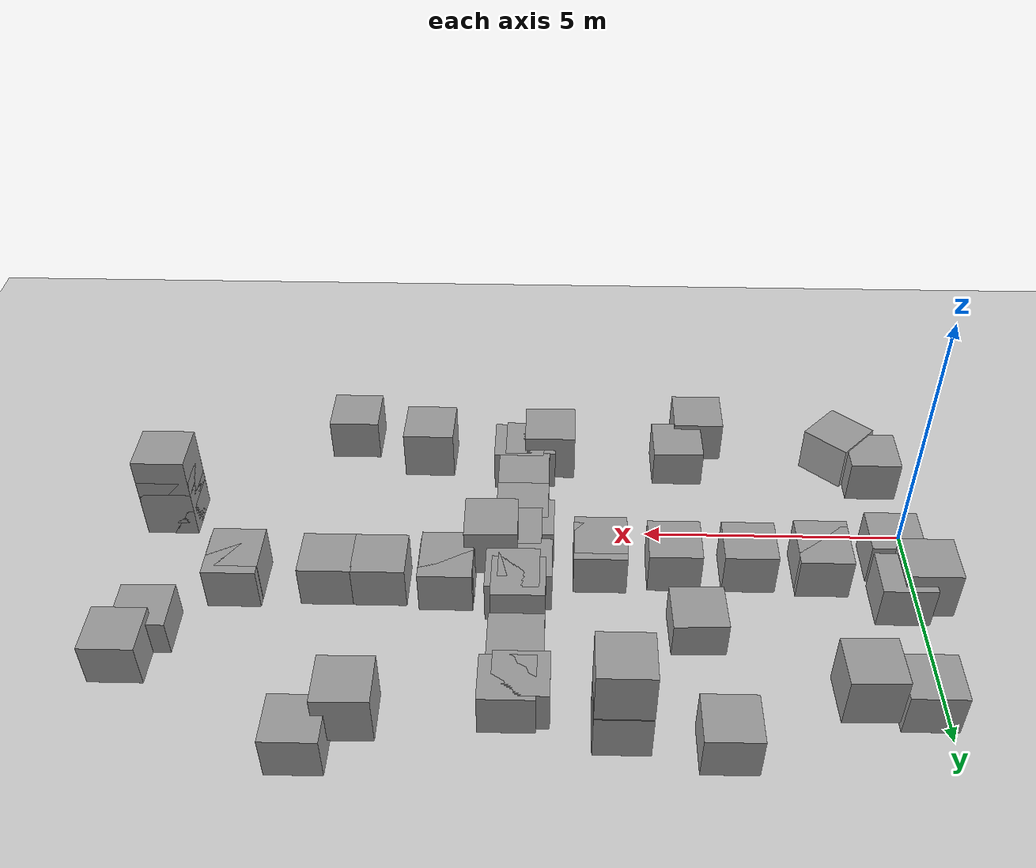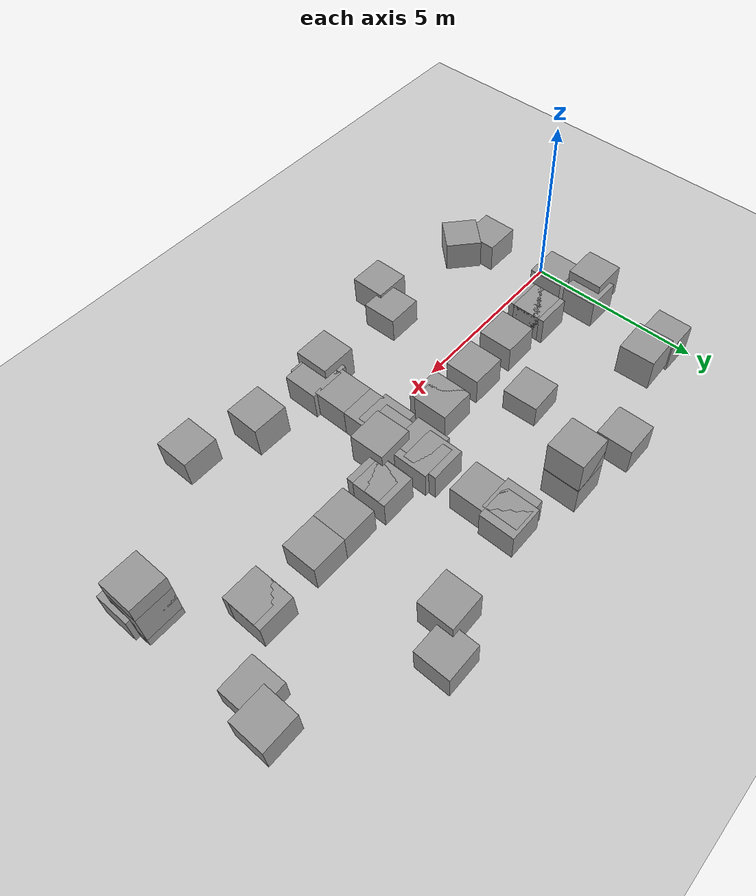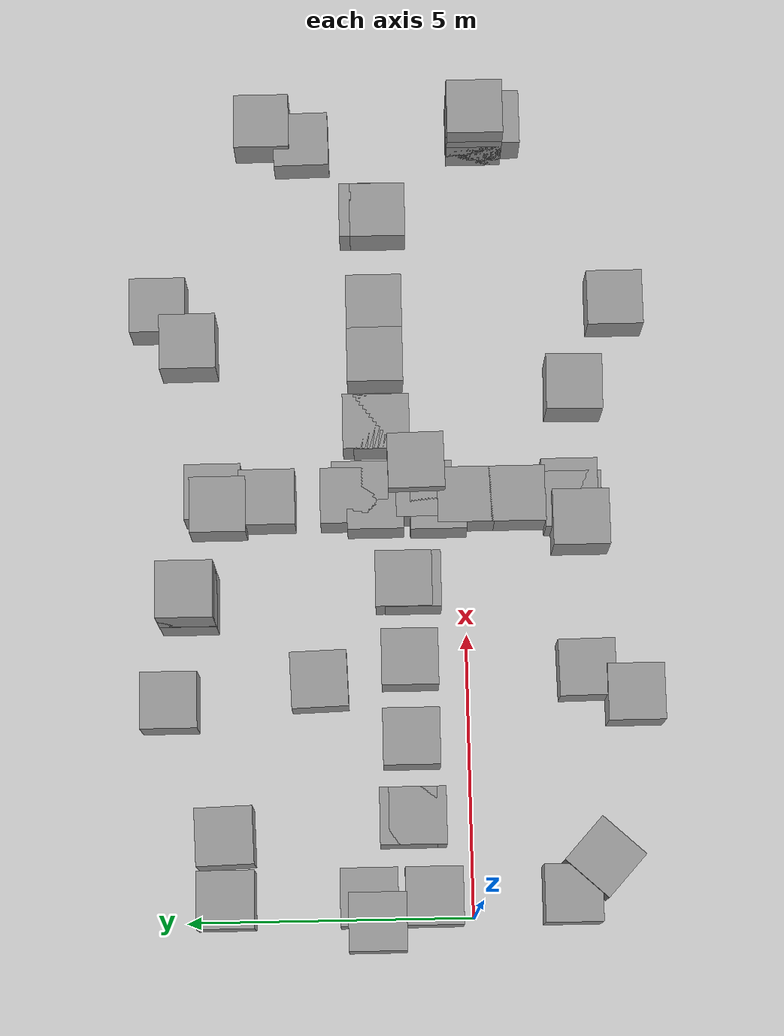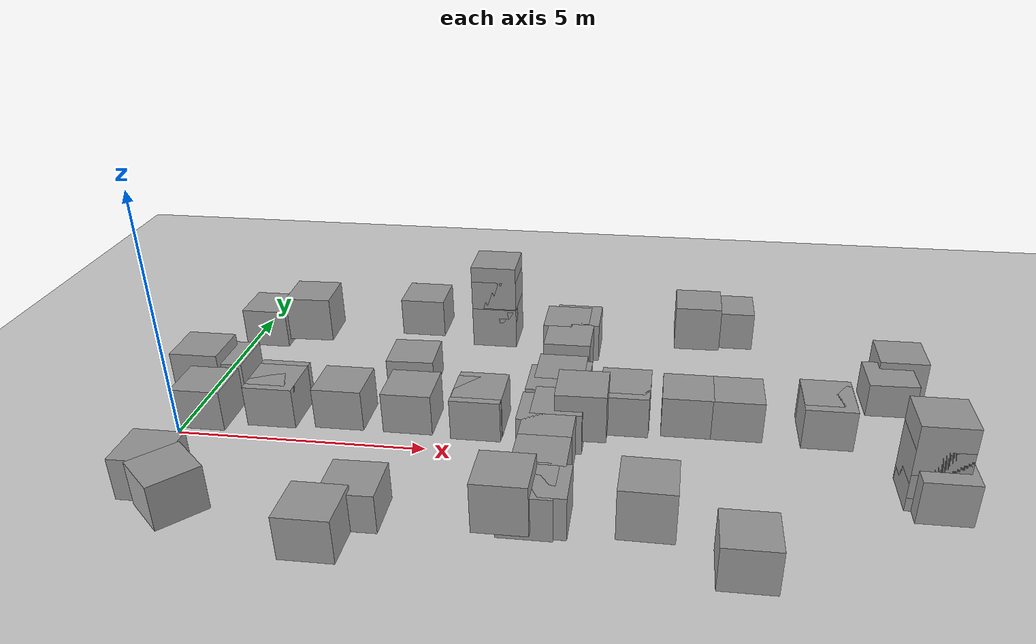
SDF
<sdf version='1.7'>
  <world name='default'>
    <light name='sun' type='directional'>
      <cast_shadows>1</cast_shadows>
      <pose>0 0 10 0 -0 0</pose>
      <diffuse>0.8 0.8 0.8 1</diffuse>
      <specular>0.2 0.2 0.2 1</specular>
      <attenuation>
        <range>1000</range>
        <constant>0.9</constant>
        <linear>0.01</linear>
        <quadratic>0.001</quadratic>
      </attenuation>
      <direction>-0.5 0.1 -0.9</direction>
      <spot>
        <inner_angle>0</inner_angle>
        <outer_angle>0</outer_angle>
        <falloff>0</falloff>
      </spot>
    </light>
    <model name='ground_plane'>
      <static>1</static>
      <link name='link'>
        <collision name='collision'>
          <geometry>
            <plane>
              <normal>0 0 1</normal>
              <size>100 100</size>
            </plane>
          </geometry>
          <surface>
            <contact>
              <collide_bitmask>65535</collide_bitmask>
              <ode/>
            </contact>
            <friction>
              <ode>
                <mu>100</mu>
                <mu2>50</mu2>
              </ode>
              <torsional>
                <ode/>
              </torsional>
            </friction>
            <bounce/>
          </surface>
          <max_contacts>10</max_contacts>
        </collision>
        <visual name='visual'>
          <cast_shadows>0</cast_shadows>
          <geometry>
            <plane>
              <normal>0 0 1</normal>
              <size>100 100</size>
            </plane>
          </geometry>
          <material>
            <script>
              <uri>file://media/materials/scripts/gazebo.material</uri>
              <name>Gazebo/Grey</name>
            </script>
          </material>
        </visual>
        <self_collide>0</self_collide>
        <enable_wind>0</enable_wind>
        <kinematic>0</kinematic>
      </link>
    </model>
    <gravity>0 0 -9.8</gravity>
    <magnetic_field>6e-06 2.3e-05 -4.2e-05</magnetic_field>
    <atmosphere type='adiabatic'/>
    <physics type='ode'>
      <max_step_size>0.001</max_step_size>
      <real_time_factor>1</real_time_factor>
      <real_time_update_rate>1000</real_time_update_rate>
    </physics>
    <scene>
      <ambient>0.4 0.4 0.4 1</ambient>
      <background>0.7 0.7 0.7 1</background>
      <shadows>1</shadows>
    </scene>
    <wind/>
    <spherical_coordinates>
      <surface_model>EARTH_WGS84</surface_model>
      <latitude_deg>0</latitude_deg>
      <longitude_deg>0</longitude_deg>
      <elevation>0</elevation>
      <heading_deg>0</heading_deg>
    </spherical_coordinates>
    <gui fullscreen='0'>
      <camera name='user_camera'>
        <pose>-2.70813 5.70495 19.0216 2e-06 1.5418 -1.5749</pose>
        <view_controller>orbit</view_controller>
        <projection_type>perspective</projection_type>
      </camera>
    </gui>
    <include>
      <uri>model://unit_box</uri>
      <name>bed</name>
      <pose>4.28500 -2.08250 0.26000 0 0 0.01449</pose>
      <scale>2.07 1.46 0.52000</scale>
    </include>
<include>
      <uri>model://unit_box</uri>
      <name>low_table</name>
      <pose>0.96000 -2.27250 0.39000 0 0 2.40252</pose>
      <scale>1.07 0.52 0.02000</scale>
    </include>
<include>
      <uri>model://unit_box</uri>
      <name>round_table</name>
      <pose>6.90000 -2.04000 0.64000 0 0 0.00000</pose>
      <scale>0.29 0.25 0.02000</scale>
    </include>
<include>
      <uri>model://unit_box</uri>
      <name>living_table</name>
      <pose>1.42000 4.28500 0.71000 0 0 -3.11059</pose>
      <scale>1.29 0.95 0.02000</scale>
    </include>
<include>
      <uri>model://unit_box</uri>
      <name>sofa</name>
      <pose>4.17250 2.63000 0.20000 0 0 -3.10827</pose>
      <scale>1.50 0.80 0.40000</scale>
    </include>
<include>
      <uri>model://unit_box</uri>
      <name>shelf_0</name>
      <pose>5.60250 4.90250 0.41000 0 0 3.14159</pose>
      <scale>0.85 0.66 0.82000</scale>
    </include>
<include>
      <uri>model://unit_box</uri>
      <name>shelf_1</name>
      <pose>5.60250 4.90250 1.08000 0 0 3.14159</pose>
      <scale>0.85 0.66 0.02000</scale>
    </include>
<include>
      <uri>model://unit_box</uri>
      <name>shelf_2</name>
      <pose>5.60250 4.90250 1.43000 0 0 3.14159</pose>
      <scale>0.85 0.66 0.02000</scale>
    </include>
<include>
      <uri>model://unit_box</uri>
      <name>laundry_table</name>
      <pose>10.21750 4.88000 0.70000 0 0 1.58006</pose>
      <scale>1.08 0.68 0.10000</scale>
    </include>
<include>
      <uri>model://unit_box</uri>
      <name>washing_machine</name>
      <pose>14.14250 2.82500 0.20000 0 0 -1.55356</pose>
      <scale>0.58 0.53 0.40000</scale>
    </include>
<include>
      <uri>model://unit_box</uri>
      <name>side_table</name>
      <pose>7.96750 0.85250 0.69000 0 0 0.01667</pose>
      <scale>0.60 0.47 0.02000</scale>
    </include>
<include>
      <uri>model://unit_box</uri>
      <name>dining_table</name>
      <pose>9.34750 -1.99250 0.68500 0 0 -0.01648</pose>
      <scale>1.82 1.04 0.03000</scale>
    </include>
<include>
      <uri>model://unit_box</uri>
      <name>cabinet_0</name>
      <pose>14.32750 -0.33500 0.05000 0 0 1.57080</pose>
      <scale>0.80 0.28 0.10000</scale>
    </include>
<include>
      <uri>model://unit_box</uri>
      <name>cabinet_1</name>
      <pose>14.32750 -0.33500 0.47000 0 0 1.57080</pose>
      <scale>0.80 0.28 0.02000</scale>
    </include>
<include>
      <uri>model://unit_box</uri>
      <name>cabinet_2</name>
      <pose>14.32750 -0.33500 0.76000 0 0 1.57080</pose>
      <scale>0.80 0.28 0.02000</scale>
    </include>
<include>
      <uri>model://unit_box</uri>
      <name>cabinet_3</name>
      <pose>14.32750 -0.33500 1.25000 0 0 1.57080</pose>
      <scale>0.80 0.28 0.42000</scale>
    </include>
<include>
      <uri>model://unit_box</uri>
      <name>virtual_barrier_exit_entrance</name>
      <pose>-0.07500 1.67500 0.60000 0 0 0.00000</pose>
      <scale>0.85 0.95 1.20000</scale>
    </include>
<include>
      <uri>model://unit_box</uri>
      <name>dining_wall_0_</name>
      <pose>8.76500 1.45000 0.35000 0 0 0.00000</pose>
      <scale>2.49 0.10 0.70</scale>
    </include>
<include>
      <uri>model://unit_box</uri>
      <name>dining_wall_1_</name>
      <pose>14.45000 -0.67500 0.35000 0 0 1.57080</pose>
      <scale>4.25 0.10 0.70</scale>
    </include>
<include>
      <uri>model://unit_box</uri>
      <name>dining_wall_2_</name>
      <pose>10.98500 -2.80000 0.35000 0 0 0.00000</pose>
      <scale>6.93 0.10 0.70</scale>
    </include>
<include>
      <uri>model://unit_box</uri>
      <name>dining_wall_3_</name>
      <pose>7.52000 -1.87000 0.35000 0 0 1.57080</pose>
      <scale>1.86 0.10 0.70</scale>
    </include>
<include>
      <uri>model://unit_box</uri>
      <name>dining_wall_4_</name>
      <pose>7.52000 0.71500 0.35000 0 0 1.57080</pose>
      <scale>1.47 0.10 0.70</scale>
    </include>
<include>
      <uri>model://unit_box</uri>
      <name>dining_wall_5_</name>
      <pose>12.72000 1.45000 0.35000 0 0 0.00000</pose>
      <scale>3.46 0.10 0.70</scale>
    </include>
<include>
      <uri>model://unit_box</uri>
      <name>living_wall_0_</name>
      <pose>0.36000 1.81500 0.35000 0 0 1.57080</pose>
      <scale>1.41 0.10 0.70</scale>
    </include>
<include>
      <uri>model://unit_box</uri>
      <name>living_wall_1_</name>
      <pose>3.83500 5.26000 0.35000 0 0 0.00000</pose>
      <scale>6.95 0.10 0.70</scale>
    </include>
<include>
      <uri>model://unit_box</uri>
      <name>living_wall_2_</name>
      <pose>7.31000 1.58500 0.35000 0 0 1.57080</pose>
      <scale>0.95 0.10 0.70</scale>
    </include>
<include>
      <uri>model://unit_box</uri>
      <name>living_wall_3_</name>
      <pose>1.74000 1.11000 0.35000 0 0 0.00000</pose>
      <scale>2.76 0.10 0.70</scale>
    </include>
<include>
      <uri>model://unit_box</uri>
      <name>living_wall_4_</name>
      <pose>5.91500 1.11000 0.35000 0 0 0.00000</pose>
      <scale>2.79 0.10 0.70</scale>
    </include>
<include>
      <uri>model://unit_box</uri>
      <name>living_wall_5_</name>
      <pose>7.31000 4.38500 0.35000 0 0 1.57080</pose>
      <scale>1.75 0.10 0.70</scale>
    </include>
<include>
      <uri>model://unit_box</uri>
      <name>living_wall_6_</name>
      <pose>0.36000 4.29000 0.35000 0 0 1.57080</pose>
      <scale>1.94 0.10 0.70</scale>
    </include>
<include>
      <uri>model://unit_box</uri>
      <name>kitchen_wall_0_</name>
      <pose>1.74000 0.95000 0.35000 0 0 0.00000</pose>
      <scale>2.76 0.10 0.70</scale>
    </include>
<include>
      <uri>model://unit_box</uri>
      <name>kitchen_wall_1_</name>
      <pose>7.29000 -1.93000 0.35000 0 0 1.57080</pose>
      <scale>1.98 0.10 0.70</scale>
    </include>
<include>
      <uri>model://unit_box</uri>
      <name>kitchen_wall_2_</name>
      <pose>3.82500 -2.92000 0.35000 0 0 0.00000</pose>
      <scale>6.93 0.10 0.70</scale>
    </include>
<include>
      <uri>model://unit_box</uri>
      <name>kitchen_wall_3_</name>
      <pose>0.36000 -1.70500 0.35000 0 0 1.57080</pose>
      <scale>2.43 0.10 0.70</scale>
    </include>
<include>
      <uri>model://unit_box</uri>
      <name>kitchen_wall_4_</name>
      <pose>0.36000 0.69000 0.35000 0 0 1.57080</pose>
      <scale>0.52 0.10 0.70</scale>
    </include>
<include>
      <uri>model://unit_box</uri>
      <name>kitchen_wall_5_</name>
      <pose>5.90500 0.95000 0.35000 0 0 0.00000</pose>
      <scale>2.77 0.10 0.70</scale>
    </include>
<include>
      <uri>model://unit_box</uri>
      <name>kitchen_wall_6_</name>
      <pose>7.29000 0.46500 0.35000 0 0 1.57080</pose>
      <scale>0.97 0.10 0.70</scale>
    </include>
<include>
      <uri>model://unit_box</uri>
      <name>laundry_room_wall_0_</name>
      <pose>8.77500 1.64000 0.35000 0 0 0.00000</pose>
      <scale>2.47 0.10 0.70</scale>
    </include>
<include>
      <uri>model://unit_box</uri>
      <name>laundry_room_wall_1_</name>
      <pose>7.54000 1.85000 0.35000 0 0 1.57080</pose>
      <scale>0.42 0.10 0.70</scale>
    </include>
<include>
      <uri>model://unit_box</uri>
      <name>laundry_room_wall_2_</name>
      <pose>11.00000 5.44000 0.35000 0 0 0.00000</pose>
      <scale>6.92 0.10 0.70</scale>
    </include>
<include>
      <uri>model://unit_box</uri>
      <name>laundry_room_wall_3_</name>
      <pose>14.46000 3.54000 0.35000 0 0 1.57080</pose>
      <scale>3.80 0.10 0.70</scale>
    </include>
<include>
      <uri>model://unit_box</uri>
      <name>laundry_room_wall_4_</name>
      <pose>12.72500 1.64000 0.35000 0 0 0.00000</pose>
      <scale>3.47 0.10 0.70</scale>
    </include>
<include>
      <uri>model://unit_box</uri>
      <name>laundry_room_wall_5_</name>
      <pose>7.54000 4.47500 0.35000 0 0 1.57080</pose>
      <scale>1.93 0.10 0.70</scale>
    </include>
<include>
      <uri>model://unit_box</uri>
      <name>inter_room_wall_0_</name>
      <pose>7.40500 -0.94000 0.35000 0 0 3.14159</pose>
      <scale>0.23 0.10 0.70</scale>
    </include>
<include>
      <uri>model://unit_box</uri>
      <name>inter_room_wall_1_</name>
      <pose>7.40500 -0.02000 0.35000 0 0 3.14159</pose>
      <scale>0.23 0.10 0.70</scale>
    </include>
<include>
      <uri>model://unit_box</uri>
      <name>inter_room_wall_2_</name>
      <pose>10.01000 1.54500 0.35000 0 0 1.57080</pose>
      <scale>0.19 0.10 0.70</scale>
    </include>
<include>
      <uri>model://unit_box</uri>
      <name>inter_room_wall_3_</name>
      <pose>10.99000 1.54500 0.35000 0 0 1.57080</pose>
      <scale>0.19 0.10 0.70</scale>
    </include>
<include>
      <uri>model://unit_box</uri>
      <name>inter_room_wall_4_</name>
      <pose>3.12000 1.03000 0.35000 0 0 -1.57080</pose>
      <scale>0.16 0.10 0.70</scale>
    </include>
<include>
      <uri>model://unit_box</uri>
      <name>inter_room_wall_5_</name>
      <pose>4.52000 1.03000 0.35000 0 0 -1.57080</pose>
      <scale>0.16 0.10 0.70</scale>
    </include>
<include>
      <uri>model://unit_box</uri>
      <name>inter_room_wall_6_</name>
      <pose>7.42500 2.06000 0.35000 0 0 0.00000</pose>
      <scale>0.23 0.10 0.70</scale>
    </include>
<include>
      <uri>model://unit_box</uri>
      <name>inter_room_wall_7_</name>
      <pose>7.42500 3.51000 0.35000 0 0 0.00000</pose>
      <scale>0.23 0.10 0.70</scale>
    </include>
  </world>
</sdf>

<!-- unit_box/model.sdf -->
<sdf version='1.7'>
  <model name='unit_box'>
    <link name='link'>
      <inertial>
        <mass>1</mass>
        <inertia>
          <ixx>0.166667</ixx>
          <ixy>0</ixy>
          <ixz>0</ixz>
          <iyy>0.166667</iyy>
          <iyz>0</iyz>
          <izz>0.166667</izz>
        </inertia>
        <pose>0 0 0 0 -0 0</pose>
      </inertial>
      <self_collide>0</self_collide>
      <enable_wind>0</enable_wind>
      <pose>0 0 0 0 -0 0</pose>
      <gravity>1</gravity>
      <kinematic>0</kinematic>
      <visual name='visual'>
        <geometry>
          <box>
            <size>1 1 1</size>
          </box>
        </geometry>
        <material>
          <script>
            <name>Gazebo/Grey</name>
            <uri>file://media/materials/scripts/gazebo.material</uri>
          </script>
          <shader type='pixel'>
            <normal_map>__default__</normal_map>
          </shader>
          <ambient>0.8 0.8 0.8 1</ambient>
          <diffuse>0.7 0.7 0.7 1</diffuse>
          <specular>0.01 0.01 0.01 1</specular>
          <emissive>0 0 0 1</emissive>
        </material>
        <pose>0 0 0 0 -0 0</pose>
        <transparency>0</transparency>
        <cast_shadows>1</cast_shadows>
      </visual>
      <collision name='collision'>
        <laser_retro>0</laser_retro>
        <max_contacts>10</max_contacts>
        <pose>0 0 0 0 -0 0</pose>
        <geometry>
          <box>
            <size>1 1 1</size>
          </box>
        </geometry>
        <surface>
          <friction>
            <ode>
              <mu>1</mu>
              <mu2>1</mu2>
              <fdir1>0 0 0</fdir1>
              <slip1>0</slip1>
              <slip2>0</slip2>
            </ode>
            <torsional>
              <coefficient>1</coefficient>
              <patch_radius>0</patch_radius>
              <surface_radius>0</surface_radius>
              <use_patch_radius>1</use_patch_radius>
              <ode>
                <slip>0</slip>
              </ode>
            </torsional>
          </friction>
          <bounce>
            <restitution_coefficient>0</restitution_coefficient>
            <threshold>1e+06</threshold>
          </bounce>
          <contact>
            <collide_without_contact>0</collide_without_contact>
            <collide_without_contact_bitmask>1</collide_without_contact_bitmask>
            <collide_bitmask>1</collide_bitmask>
            <ode>
              <soft_cfm>0</soft_cfm>
              <soft_erp>0.2</soft_erp>
              <kp>1e+13</kp>
              <kd>1</kd>
              <max_vel>0.01</max_vel>
              <min_depth>0</min_depth>
            </ode>
            <bullet>
              <split_impulse>1</split_impulse>
              <split_impulse_penetration_threshold>-0.01</split_impulse_penetration_threshold>
              <soft_cfm>0</soft_cfm>
              <soft_erp>0.2</soft_erp>
              <kp>1e+13</kp>
              <kd>1</kd>
            </bullet>
          </contact>
        </surface>
      </collision>
    </link>
    <static>0</static>
    <allow_auto_disable>1</allow_auto_disable>
  </model>
</sdf>
